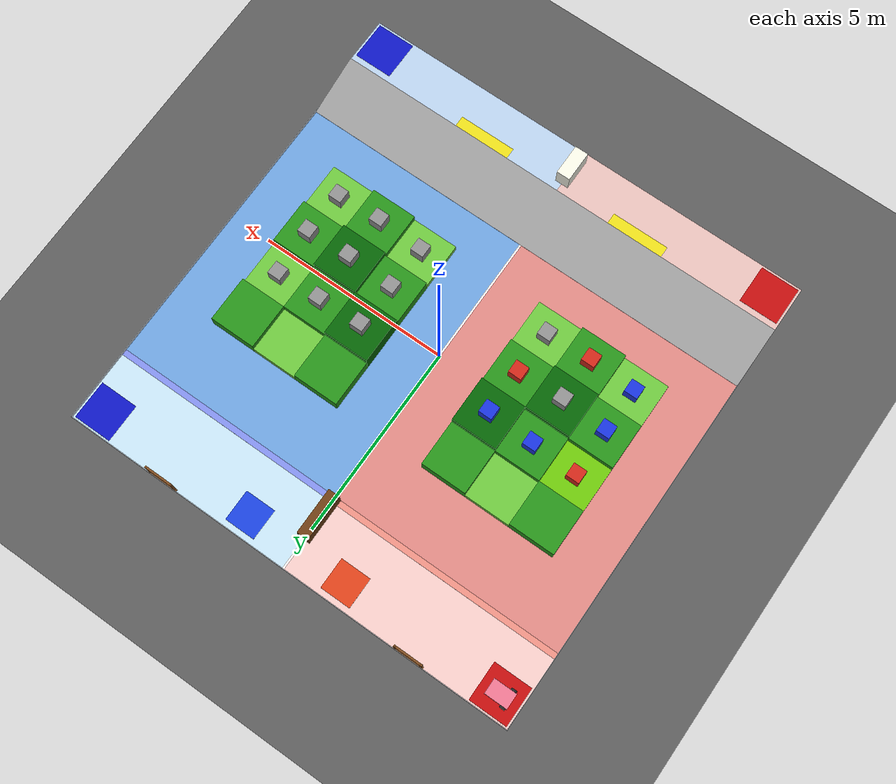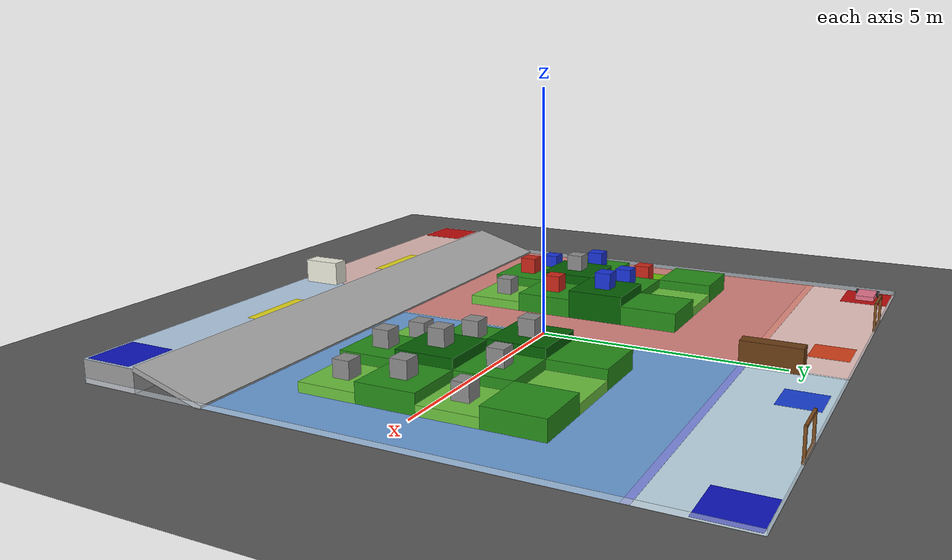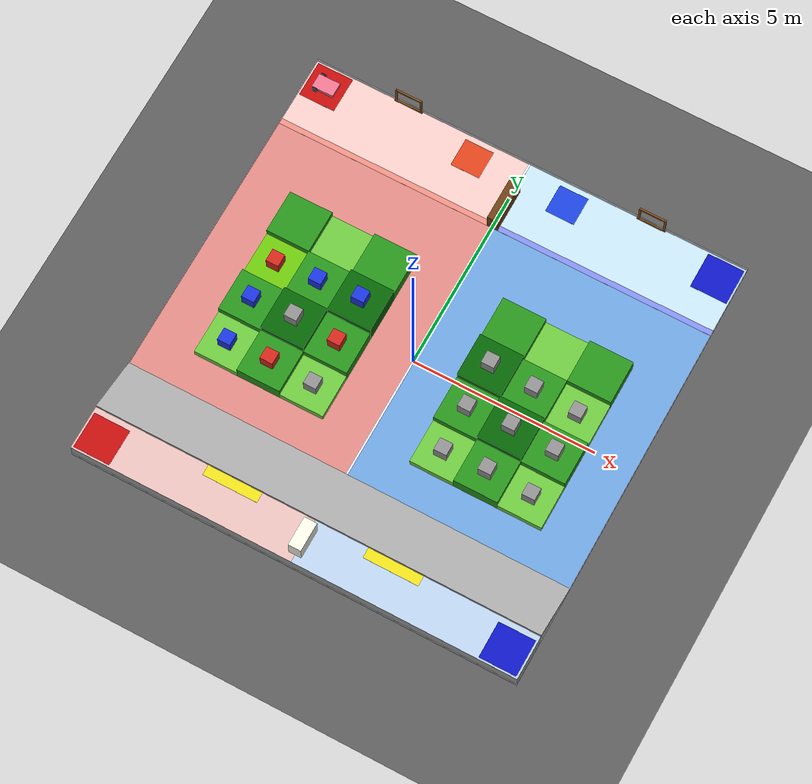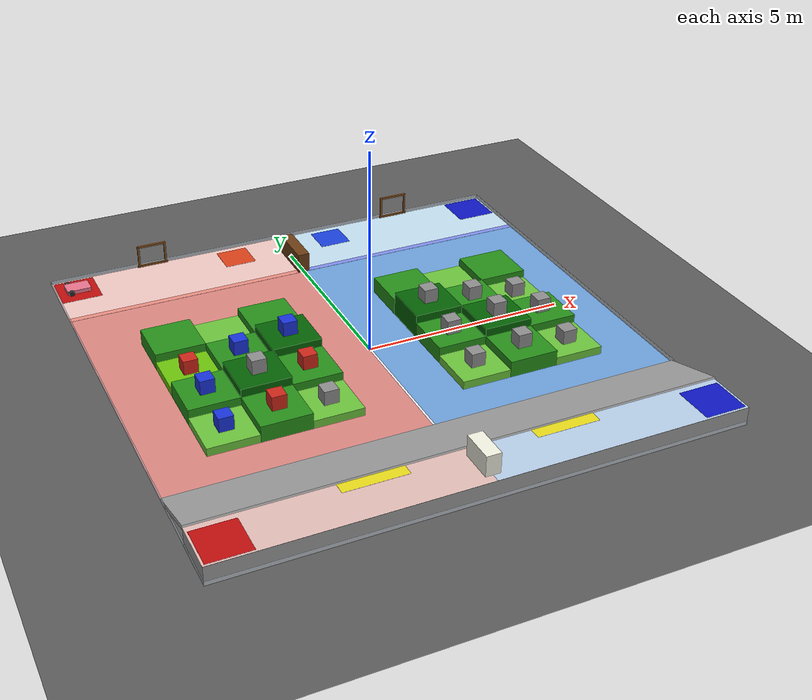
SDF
<?xml version="1.0"?>
<sdf version="1.9">
  <world name="r2_game_field">

    <!-- Physics -->
    <physics name="1ms" type="ignored">
      <max_step_size>0.001</max_step_size>
      <real_time_factor>1.0</real_time_factor>
    </physics>

    <!-- Gazebo Sim Plugins -->
    <plugin filename="gz-sim-physics-system"
      name="gz::sim::systems::Physics" />
    <plugin filename="gz-sim-user-commands-system"
      name="gz::sim::systems::UserCommands" />
    <plugin filename="gz-sim-scene-broadcaster-system"
      name="gz::sim::systems::SceneBroadcaster" />

    <!-- Sun -->
    <light type="directional" name="sun">
      <cast_shadows>true</cast_shadows>
      <pose>0 0 10 0 0 0</pose>
      <diffuse>0.85 0.85 0.85 1</diffuse>
      <specular>0.2 0.2 0.2 1</specular>
      <attenuation>
        <range>1000</range>
        <constant>0.9</constant>
        <linear>0.01</linear>
        <quadratic>0.001</quadratic>
      </attenuation>
      <direction>-0.5 0.1 -0.9</direction>
    </light>

    <!-- GROUND PLANE                                      -->
    <model name="ground_plane">
      <static>true</static>
      <link name="link">
        <collision name="collision">
          <geometry>
            <plane>
              <normal>0 0 1</normal>
              <size>20 20</size>
            </plane>
          </geometry>
          <surface>
            <friction>
              <ode>
                <mu>1.0</mu>
                <mu2>1.0</mu2>
              </ode>
            </friction>
          </surface>
        </collision>
        <visual name="visual">
          <geometry>
            <plane>
              <normal>0 0 1</normal>
              <size>20 20</size>
            </plane>
          </geometry>
          <material>
            <ambient>0.35 0.35 0.35 1</ambient>
            <diffuse>0.35 0.35 0.35 1</diffuse>
          </material>
        </visual>
      </link>
    </model>

    <!-- FENCE WALLS — 100mm H × 10mm thick acrylic        -->

    <model name="fence_north">
      <static>true</static>
      <pose>0 6.09 0.05 0 0 0</pose>
      <link name="link">
        <collision name="collision">
          <geometry>
            <box>
              <size>12.20 0.01 0.1</size>
            </box>
          </geometry>
        </collision>
        <visual name="visual">
          <geometry>
            <box>
              <size>12.20 0.01 0.1</size>
            </box>
          </geometry>
          <material>
            <ambient>0.9 0.95 1.0 0.5</ambient>
            <diffuse>0.9 0.95 1.0 0.5</diffuse>
          </material>
        </visual>
      </link>
    </model>

    <model name="fence_south">
      <static>true</static>
      <pose>0 -6.09 0.05 0 0 0</pose>
      <link name="link">
        <collision name="collision">
          <geometry>
            <box>
              <size>12.20 0.01 0.1</size>
            </box>
          </geometry>
        </collision>
        <visual name="visual">
          <geometry>
            <box>
              <size>12.20 0.01 0.1</size>
            </box>
          </geometry>
          <material>
            <ambient>0.9 0.95 1.0 0.5</ambient>
            <diffuse>0.9 0.95 1.0 0.5</diffuse>
          </material>
        </visual>
      </link>
    </model>

    <model name="fence_west">
      <static>true</static>
      <pose>-6.09 0 0.05 0 0 0</pose>
      <link name="link">
        <collision name="collision">
          <geometry>
            <box>
              <size>0.01 12.18 0.1</size>
            </box>
          </geometry>
        </collision>
        <visual name="visual">
          <geometry>
            <box>
              <size>0.01 12.18 0.1</size>
            </box>
          </geometry>
          <material>
            <ambient>0.9 0.95 1.0 0.5</ambient>
            <diffuse>0.9 0.95 1.0 0.5</diffuse>
          </material>
        </visual>
      </link>
    </model>

    <model name="fence_east">
      <static>true</static>
      <pose>6.09 0 0.05 0 0 0</pose>
      <link name="link">
        <collision name="collision">
          <geometry>
            <box>
              <size>0.01 12.18 0.1</size>
            </box>
          </geometry>
        </collision>
        <visual name="visual">
          <geometry>
            <box>
              <size>0.01 12.18 0.1</size>
            </box>
          </geometry>
          <material>
            <ambient>0.9 0.95 1.0 0.5</ambient>
            <diffuse>0.9 0.95 1.0 0.5</diffuse>
          </material>
        </visual>
      </link>
    </model>

    <!-- Center divider line (visual only, spans all zones) -->
    <model name="center_line">
      <static>true</static>
      <pose>0 0 0.003 0 0 0</pose>
      <link name="link">
        <visual name="visual">
          <geometry>
            <box>
              <size>0.05 12.18 0.001</size>
            </box>
          </geometry>
          <material>
            <ambient>1.0 1.0 1.0 1</ambient>
            <diffuse>1.0 1.0 1.0 1</diffuse>
          </material>
        </visual>
      </link>
    </model>

    <!-- ZONE 1 — MARTIAL CLUB                             -->
    <!-- y: +4.09 to +6.09 (2000mm)                       -->
    <!-- Left = Pink (Team 1), Right = Blue (Team 2)       -->

    <!-- Zone 1 Left Floor (light pink) -->
    <model name="z1_left_floor">
      <static>true</static>
      <pose>-3.045 5.09 0.001 0 0 0</pose>
      <link name="link">
        <collision name="collision">
          <geometry>
            <box>
              <size>6.09 2.0 0.002</size>
            </box>
          </geometry>
        </collision>
        <visual name="visual">
          <geometry>
            <box>
              <size>6.09 2.0 0.002</size>
            </box>
          </geometry>
          <material>
            <ambient>0.93 0.78 0.76 1</ambient>
            <diffuse>0.93 0.78 0.76 1</diffuse>
          </material>
        </visual>
      </link>
    </model>

    <!-- Zone 1 Right Floor (light blue) -->
    <model name="z1_right_floor">
      <static>true</static>
      <pose>3.045 5.09 0.001 0 0 0</pose>
      <link name="link">
        <collision name="collision">
          <geometry>
            <box>
              <size>6.09 2.0 0.002</size>
            </box>
          </geometry>
        </collision>
        <visual name="visual">
          <geometry>
            <box>
              <size>6.09 2.0 0.002</size>
            </box>
          </geometry>
          <material>
            <ambient>0.76 0.87 0.93 1</ambient>
            <diffuse>0.76 0.87 0.93 1</diffuse>
          </material>
        </visual>
      </link>
    </model>

    <!-- R1 Retry Zone — Left top corner (dark red, 1000×1000mm) -->
    <model name="z1_retry_r1_left">
      <static>true</static>
      <pose>-5.54 5.54 0.003 0 0 0</pose>
      <link name="link">
        <visual name="visual">
          <geometry>
            <box>
              <size>1.0 1.0 0.002</size>
            </box>
          </geometry>
          <material>
            <ambient>0.75 0.05 0.05 1</ambient>
            <diffuse>0.75 0.05 0.05 1</diffuse>
          </material>
        </visual>
      </link>
    </model>

    <!-- R1 Retry Zone — Right top corner (dark blue, 1000×1000mm) -->
    <model name="z1_retry_r1_right">
      <static>true</static>
      <pose>5.54 5.54 0.003 0 0 0</pose>
      <link name="link">
        <visual name="visual">
          <geometry>
            <box>
              <size>1.0 1.0 0.002</size>
            </box>
          </geometry>
          <material>
            <ambient>0.05 0.08 0.75 1</ambient>
            <diffuse>0.05 0.08 0.75 1</diffuse>
          </material>
        </visual>
      </link>
    </model>

    <!-- R2 Start/Retry Zone — Left inner (red, 1000×1000mm, near center) -->
    <model name="z1_retry_r2_left">
      <static>true</static>
      <pose>-1.34 5.54 0.003 0 0 0</pose>
      <link name="link">
        <visual name="visual">
          <geometry>
            <box>
              <size>0.8 0.8 0.002</size>
            </box>
          </geometry>
          <material>
            <ambient>0.85 0.25 0.10 1</ambient>
            <diffuse>0.85 0.25 0.10 1</diffuse>
          </material>
        </visual>
      </link>
    </model>

    <!-- R2 Start/Retry Zone — Right inner (blue, 1000×1000mm, near center) -->
    <model name="z1_retry_r2_right">
      <static>true</static>
      <pose>1.34 5.54 0.003 0 0 0</pose>
      <link name="link">
        <visual name="visual">
          <geometry>
            <box>
              <size>0.8 0.8 0.002</size>
            </box>
          </geometry>
          <material>
            <ambient>0.10 0.25 0.85 1</ambient>
            <diffuse>0.10 0.25 0.85 1</diffuse>
          </material>
        </visual>
      </link>
    </model>

    <!-- Staff Rack — Left (brown, 800×300×600mm, between R1 and R2 zones) -->
    <model name="z1_staff_rack_left">
      <static>true</static>
      <pose>-3.44 6.065 0 0 0 0</pose>

      <link name="rack_link">

        <!-- Thanh đáy -->
        <collision name="base_col">
          <pose>0 0 0.025 0 0 0</pose>
          <geometry>
            <box>
              <size>0.8 0.05 0.05</size>
            </box>
          </geometry>
        </collision>

        <visual name="base_vis">
          <pose>0 0 0.025 0 0 0</pose>
          <geometry>
            <box>
              <size>0.8 0.05 0.05</size>
            </box>
          </geometry>
          <material>
            <ambient>0.50 0.30 0.12 1</ambient>
            <diffuse>0.50 0.30 0.12 1</diffuse>
          </material>
        </visual>

        <!-- Trụ trái -->
        <collision name="left_col">
          <pose>-0.35 0 0.30 0 0 0</pose>
          <geometry>
            <box>
              <size>0.05 0.05 0.6</size>
            </box>
          </geometry>
        </collision>

        <visual name="left_vis">
          <pose>-0.35 0 0.30 0 0 0</pose>
          <geometry>
            <box>
              <size>0.05 0.05 0.6</size>
            </box>
          </geometry>
          <material>
            <ambient>0.50 0.30 0.12 1</ambient>
            <diffuse>0.50 0.30 0.12 1</diffuse>
          </material>
        </visual>

        <!-- Trụ phải -->
        <collision name="right_col">
          <pose>0.35 0 0.30 0 0 0</pose>
          <geometry>
            <box>
              <size>0.05 0.05 0.6</size>
            </box>
          </geometry>
        </collision>

        <visual name="right_vis">
          <pose>0.35 0 0.30 0 0 0</pose>
          <geometry>
            <box>
              <size>0.05 0.05 0.6</size>
            </box>
          </geometry>
          <material>
            <ambient>0.50 0.30 0.12 1</ambient>
            <diffuse>0.50 0.30 0.12 1</diffuse>
          </material>
        </visual>

        <!-- Thanh ngang trên -->
        <collision name="top_col">
          <pose>0 0 0.575 0 0 0</pose>
          <geometry>
            <box>
              <size>0.7 0.05 0.05</size>
            </box>
          </geometry>
        </collision>

        <visual name="top_vis">
          <pose>0 0 0.575 0 0 0</pose>
          <geometry>
            <box>
              <size>0.7 0.05 0.05</size>
            </box>
          </geometry>
          <material>
            <ambient>0.50 0.30 0.12 1</ambient>
            <diffuse>0.50 0.30 0.12 1</diffuse>
          </material>
        </visual>

      </link>
    </model>

    <!-- Staff Rack — Right (brown, 800×300×600mm, between R1 and R2 zones) -->
    <model name="z1_staff_rack_right">
      <static>true</static>
      <pose>3.44 6.065 0 0 0 0</pose>

      <link name="rack_link">

        <!-- Thanh đáy -->
        <collision name="base_col">
          <pose>0 0 0.025 0 0 0</pose>
          <geometry>
            <box>
              <size>0.8 0.05 0.05</size>
            </box>
          </geometry>
        </collision>

        <visual name="base_vis">
          <pose>0 0 0.025 0 0 0</pose>
          <geometry>
            <box>
              <size>0.8 0.05 0.05</size>
            </box>
          </geometry>
          <material>
            <ambient>0.50 0.30 0.12 1</ambient>
            <diffuse>0.50 0.30 0.12 1</diffuse>
          </material>
        </visual>

        <!-- Trụ trái -->
        <collision name="left_col">
          <pose>-0.35 0 0.30 0 0 0</pose>
          <geometry>
            <box>
              <size>0.05 0.05 0.6</size>
            </box>
          </geometry>
        </collision>

        <visual name="left_vis">
          <pose>-0.35 0 0.30 0 0 0</pose>
          <geometry>
            <box>
              <size>0.05 0.05 0.6</size>
            </box>
          </geometry>
          <material>
            <ambient>0.50 0.30 0.12 1</ambient>
            <diffuse>0.50 0.30 0.12 1</diffuse>
          </material>
        </visual>

        <!-- Trụ phải -->
        <collision name="right_col">
          <pose>0.35 0 0.30 0 0 0</pose>
          <geometry>
            <box>
              <size>0.05 0.05 0.6</size>
            </box>
          </geometry>
        </collision>

        <visual name="right_vis">
          <pose>0.35 0 0.30 0 0 0</pose>
          <geometry>
            <box>
              <size>0.05 0.05 0.6</size>
            </box>
          </geometry>
          <material>
            <ambient>0.50 0.30 0.12 1</ambient>
            <diffuse>0.50 0.30 0.12 1</diffuse>
          </material>
        </visual>

        <!-- Thanh ngang trên -->
        <collision name="top_col">
          <pose>0 0 0.575 0 0 0</pose>
          <geometry>
            <box>
              <size>0.7 0.05 0.05</size>
            </box>
          </geometry>
        </collision>

        <visual name="top_vis">
          <pose>0 0 0.575 0 0 0</pose>
          <geometry>
            <box>
              <size>0.7 0.05 0.05</size>
            </box>
          </geometry>
          <material>
            <ambient>0.50 0.30 0.12 1</ambient>
            <diffuse>0.50 0.30 0.12 1</diffuse>
          </material>
        </visual>

      </link>
    </model>

    <!-- Spearhead Rack — Center (brown, 300×300×1200mm) -->
    <model name="z1_spearhead_rack">
      <static>true</static>
      <pose>0 4.69 0.25 0 0 0</pose>
      <link name="link">
        <collision name="collision">
          <geometry>
            <box>
              <size>0.3 1.2 0.5</size>
            </box>
          </geometry>
        </collision>
        <visual name="visual">
          <geometry>
            <box>
              <size>0.3 1.2 0.5</size>
            </box>
          </geometry>
          <material>
            <ambient>0.42 0.24 0.08 1</ambient>
            <diffuse>0.42 0.24 0.08 1</diffuse>
          </material>
        </visual>
      </link>
    </model>

    <!-- R2 Entrance Zone — Left (pink strip, 6090×150mm at bottom of Zone 1) -->
    <model name="z1_entrance_r2_left">
      <static>true</static>
      <pose>-3.045 4.165 0.003 0 0 0</pose>
      <link name="link">
        <visual name="visual">
          <geometry>
            <box>
              <size>6.09 0.15 0.002</size>
            </box>
          </geometry>
          <material>
            <ambient>0.90 0.55 0.50 1</ambient>
            <diffuse>0.90 0.55 0.50 1</diffuse>
          </material>
        </visual>
      </link>
    </model>

    <!-- R2 Entrance Zone — Right (blue strip, 6090×150mm at bottom of Zone 1) -->
    <model name="z1_entrance_r2_right">
      <static>true</static>
      <pose>3.045 4.165 0.003 0 0 0</pose>
      <link name="link">
        <visual name="visual">
          <geometry>
            <box>
              <size>6.09 0.15 0.002</size>
            </box>
          </geometry>
          <material>
            <ambient>0.50 0.55 0.90 1</ambient>
            <diffuse>0.50 0.55 0.90 1</diffuse>
          </material>
        </visual>
      </link>
    </model>

    <!-- ZONE 2 — MEIHUA FOREST                            -->
    <!-- y: -3.39 to +4.09 (7480mm)                       -->
    <!-- Left = Salmon/Pink, Right = Blue                  -->

    <!-- Zone 2 Left Floor (salmon/pink) -->
    <model name="left_floor">
      <static>true</static>
      <pose>-3.045 0.35 0.001 0 0 0</pose>
      <link name="link">
        <collision name="collision">
          <geometry>
            <box>
              <size>6.09 7.48 0.002</size>
            </box>
          </geometry>
        </collision>
        <visual name="visual">
          <geometry>
            <box>
              <size>6.09 7.48 0.002</size>
            </box>
          </geometry>
          <material>
            <ambient>0.85 0.52 0.50 1</ambient>
            <diffuse>0.85 0.52 0.50 1</diffuse>
          </material>
        </visual>
      </link>
    </model>

    <!-- Zone 2 Right Floor (blue) -->
    <model name="right_floor">
      <static>true</static>
      <pose>3.045 0.35 0.001 0 0 0</pose>
      <link name="link">
        <collision name="collision">
          <geometry>
            <box>
              <size>6.09 7.48 0.002</size>
            </box>
          </geometry>
        </collision>
        <visual name="visual">
          <geometry>
            <box>
              <size>6.09 7.48 0.002</size>
            </box>
          </geometry>
          <material>
            <ambient>0.42 0.62 0.85 1</ambient>
            <diffuse>0.42 0.62 0.85 1</diffuse>
          </material>
        </visual>
      </link>
    </model>

    <!-- LEFT MEIHUA FOREST — Team 1 (Pink side)           -->
    <!-- Cols x = {-4.2, -3.0, -1.8}                      -->
    <!-- Rows y = {+1.8, +0.6, -0.6, -1.8}                -->
    <!-- Height map:                                        -->
    <!--   Row +1.8:  400H  200H  400H                     -->
    <!--   Row +0.6:  600H  400H  200H                     -->
    <!--   Row -0.6:  400H  600H  400H                     -->
    <!--   Row -1.8:  200H  400H  200H                     -->

    <!-- Row y=+1.8 -->
    <model name="lf_r1c1">
      <static>true</static>
      <pose>-4.2 1.8 0.20 0 0 0</pose>
      <link name="link">
        <collision name="collision">
          <geometry>
            <box>
              <size>1.2 1.2 0.4</size>
            </box>
          </geometry>
        </collision>
        <visual name="visual">
          <geometry>
            <box>
              <size>1.2 1.2 0.4</size>
            </box>
          </geometry>
          <material>
            <ambient>0.15 0.56 0.10 1</ambient>
            <diffuse>0.15 0.56 0.10 1</diffuse>
            <specular>0.05 0.05 0.05 1</specular>
          </material>
        </visual>
      </link>
    </model>

    <model name="lf_r1c2">
      <static>true</static>
      <pose>-3.0 1.8 0.10 0 0 0</pose>
      <link name="link">
        <collision name="collision">
          <geometry>
            <box>
              <size>1.2 1.2 0.2</size>
            </box>
          </geometry>
        </collision>
        <visual name="visual">
          <geometry>
            <box>
              <size>1.2 1.2 0.2</size>
            </box>
          </geometry>
          <material>
            <ambient>0.42 0.76 0.24 1</ambient>
            <diffuse>0.42 0.76 0.24 1</diffuse>
            <specular>0.05 0.05 0.05 1</specular>
          </material>
        </visual>
      </link>
    </model>

    <model name="lf_r1c3">
      <static>true</static>
      <pose>-1.8 1.8 0.20 0 0 0</pose>
      <link name="link">
        <collision name="collision">
          <geometry>
            <box>
              <size>1.2 1.2 0.4</size>
            </box>
          </geometry>
        </collision>
        <visual name="visual">
          <geometry>
            <box>
              <size>1.2 1.2 0.4</size>
            </box>
          </geometry>
          <material>
            <ambient>0.15 0.56 0.10 1</ambient>
            <diffuse>0.15 0.56 0.10 1</diffuse>
            <specular>0.05 0.05 0.05 1</specular>
          </material>
        </visual>
      </link>
    </model>

    <!-- Row y=+0.6 -->
    <model name="lf_r2c1">
      <static>true</static>
      <pose>-4.2 0.6 0.10 0 0 0</pose>
      <link name="link">
        <collision name="collision">
          <geometry>
            <box>
              <size>1.2 1.2 0.2</size>
            </box>
          </geometry>
        </collision>
        <visual name="visual">
          <geometry>
            <box>
              <size>1.2 1.2 0.2</size>
            </box>
          </geometry>
          <material>
            <ambient>0.42 0.76 0.04 1</ambient>
            <diffuse>0.42 0.76 0.04 1</diffuse>
            <specular>0.05 0.05 0.05 1</specular>
          </material>
        </visual>
      </link>
    </model>

    <model name="lf_r2c2">
      <static>true</static>
      <pose>-3.0 0.6 0.20 0 0 0</pose>
      <link name="link">
        <collision name="collision">
          <geometry>
            <box>
              <size>1.2 1.2 0.4</size>
            </box>
          </geometry>
        </collision>
        <visual name="visual">
          <geometry>
            <box>
              <size>1.2 1.2 0.4</size>
            </box>
          </geometry>
          <material>
            <ambient>0.15 0.56 0.10 1</ambient>
            <diffuse>0.15 0.56 0.10 1</diffuse>
            <specular>0.05 0.05 0.05 1</specular>
          </material>
        </visual>
      </link>
    </model>

    <model name="lf_r2c3">
      <static>true</static>
      <pose>-1.8 0.6 0.30 0 0 0</pose>
      <link name="link">
        <collision name="collision">
          <geometry>
            <box>
              <size>1.2 1.2 0.6</size>
            </box>
          </geometry>
        </collision>
        <visual name="visual">
          <geometry>
            <box>
              <size>1.2 1.2 0.6</size>
            </box>
          </geometry>
          <material>
            <ambient>0.02 0.38 0.02 1</ambient>
            <diffuse>0.02 0.38 0.02 1</diffuse>
            <specular>0.05 0.05 0.05 1</specular>
          </material>
        </visual>
      </link>
    </model>

    <!-- Row y=-0.6 -->
    <model name="lf_r3c1">
      <static>true</static>
      <pose>-4.2 -0.6 0.20 0 0 0</pose>
      <link name="link">
        <collision name="collision">
          <geometry>
            <box>
              <size>1.2 1.2 0.4</size>
            </box>
          </geometry>
        </collision>
        <visual name="visual">
          <geometry>
            <box>
              <size>1.2 1.2 0.4</size>
            </box>
          </geometry>
          <material>
            <ambient>0.15 0.56 0.10 1</ambient>
            <diffuse>0.15 0.56 0.10 1</diffuse>
            <specular>0.05 0.05 0.05 1</specular>
          </material>
        </visual>
      </link>
    </model>

    <model name="lf_r3c2">
      <static>true</static>
      <pose>-3.0 -0.6 0.30 0 0 0</pose>
      <link name="link">
        <collision name="collision">
          <geometry>
            <box>
              <size>1.2 1.2 0.6</size>
            </box>
          </geometry>
        </collision>
        <visual name="visual">
          <geometry>
            <box>
              <size>1.2 1.2 0.6</size>
            </box>
          </geometry>
          <material>
            <ambient>0.02 0.38 0.02 1</ambient>
            <diffuse>0.02 0.38 0.02 1</diffuse>
            <specular>0.05 0.05 0.05 1</specular>
          </material>
        </visual>
      </link>
    </model>

    <model name="lf_r3c3">
      <static>true</static>
      <pose>-1.8 -0.6 0.20 0 0 0</pose>
      <link name="link">
        <collision name="collision">
          <geometry>
            <box>
              <size>1.2 1.2 0.4</size>
            </box>
          </geometry>
        </collision>
        <visual name="visual">
          <geometry>
            <box>
              <size>1.2 1.2 0.4</size>
            </box>
          </geometry>
          <material>
            <ambient>0.15 0.56 0.10 1</ambient>
            <diffuse>0.15 0.56 0.10 1</diffuse>
            <specular>0.05 0.05 0.05 1</specular>
          </material>
        </visual>
      </link>
    </model>

    <!-- Row y=-1.8 -->
    <model name="lf_r4c1">
      <static>true</static>
      <pose>-4.2 -1.8 0.10 0 0 0</pose>
      <link name="link">
        <collision name="collision">
          <geometry>
            <box>
              <size>1.2 1.2 0.2</size>
            </box>
          </geometry>
        </collision>
        <visual name="visual">
          <geometry>
            <box>
              <size>1.2 1.2 0.2</size>
            </box>
          </geometry>
          <material>
            <ambient>0.42 0.76 0.24 1</ambient>
            <diffuse>0.42 0.76 0.24 1</diffuse>
            <specular>0.05 0.05 0.05 1</specular>
          </material>
        </visual>
      </link>
    </model>

    <model name="lf_r4c2">
      <static>true</static>
      <pose>-3.0 -1.8 0.20 0 0 0</pose>
      <link name="link">
        <collision name="collision">
          <geometry>
            <box>
              <size>1.2 1.2 0.4</size>
            </box>
          </geometry>
        </collision>
        <visual name="visual">
          <geometry>
            <box>
              <size>1.2 1.2 0.4</size>
            </box>
          </geometry>
          <material>
            <ambient>0.15 0.56 0.10 1</ambient>
            <diffuse>0.15 0.56 0.10 1</diffuse>
            <specular>0.05 0.05 0.05 1</specular>
          </material>
        </visual>
      </link>
    </model>

    <model name="lf_r4c3">
      <static>true</static>
      <pose>-1.8 -1.8 0.10 0 0 0</pose>
      <link name="link">
        <collision name="collision">
          <geometry>
            <box>
              <size>1.2 1.2 0.2</size>
            </box>
          </geometry>
        </collision>
        <visual name="visual">
          <geometry>
            <box>
              <size>1.2 1.2 0.2</size>
            </box>
          </geometry>
          <material>
            <ambient>0.42 0.76 0.24 1</ambient>
            <diffuse>0.42 0.76 0.24 1</diffuse>
            <specular>0.05 0.05 0.05 1</specular>
          </material>
        </visual>
      </link>
    </model>

    <!-- RIGHT MEIHUA FOREST — Team 2 (Blue side)          -->
    <!-- Cols x = {+1.8, +3.0, +4.2}                      -->
    <!-- Same height pattern (mirrored)                    -->

    <!-- Row y=+1.8 -->
    <model name="rf_r1c1">
      <static>true</static>
      <pose>1.8 1.8 0.20 0 0 0</pose>
      <link name="link">
        <collision name="collision">
          <geometry>
            <box>
              <size>1.2 1.2 0.4</size>
            </box>
          </geometry>
        </collision>
        <visual name="visual">
          <geometry>
            <box>
              <size>1.2 1.2 0.4</size>
            </box>
          </geometry>
          <material>
            <ambient>0.15 0.56 0.10 1</ambient>
            <diffuse>0.15 0.56 0.10 1</diffuse>
            <specular>0.05 0.05 0.05 1</specular>
          </material>
        </visual>
      </link>
    </model>

    <model name="rf_r1c2">
      <static>true</static>
      <pose>3.0 1.8 0.10 0 0 0</pose>
      <link name="link">
        <collision name="collision">
          <geometry>
            <box>
              <size>1.2 1.2 0.2</size>
            </box>
          </geometry>
        </collision>
        <visual name="visual">
          <geometry>
            <box>
              <size>1.2 1.2 0.2</size>
            </box>
          </geometry>
          <material>
            <ambient>0.42 0.76 0.24 1</ambient>
            <diffuse>0.42 0.76 0.24 1</diffuse>
            <specular>0.05 0.05 0.05 1</specular>
          </material>
        </visual>
      </link>
    </model>

    <model name="rf_r1c3">
      <static>true</static>
      <pose>4.2 1.8 0.20 0 0 0</pose>
      <link name="link">
        <collision name="collision">
          <geometry>
            <box>
              <size>1.2 1.2 0.4</size>
            </box>
          </geometry>
        </collision>
        <visual name="visual">
          <geometry>
            <box>
              <size>1.2 1.2 0.4</size>
            </box>
          </geometry>
          <material>
            <ambient>0.15 0.56 0.10 1</ambient>
            <diffuse>0.15 0.56 0.10 1</diffuse>
            <specular>0.05 0.05 0.05 1</specular>
          </material>
        </visual>
      </link>
    </model>

    <!-- Row y=+0.6 -->
    <model name="rf_r2c1">
      <static>true</static>
      <pose>1.8 0.6 0.30 0 0 0</pose>
      <link name="link">
        <collision name="collision">
          <geometry>
            <box>
              <size>1.2 1.2 0.6</size>
            </box>
          </geometry>
        </collision>
        <visual name="visual">
          <geometry>
            <box>
              <size>1.2 1.2 0.6</size>
            </box>
          </geometry>
          <material>
            <ambient>0.02 0.38 0.02 1</ambient>
            <diffuse>0.02 0.38 0.02 1</diffuse>
            <specular>0.05 0.05 0.05 1</specular>
          </material>
        </visual>
      </link>
    </model>

    <model name="rf_r2c2">
      <static>true</static>
      <pose>3.0 0.6 0.20 0 0 0</pose>
      <link name="link">
        <collision name="collision">
          <geometry>
            <box>
              <size>1.2 1.2 0.4</size>
            </box>
          </geometry>
        </collision>
        <visual name="visual">
          <geometry>
            <box>
              <size>1.2 1.2 0.4</size>
            </box>
          </geometry>
          <material>
            <ambient>0.15 0.56 0.10 1</ambient>
            <diffuse>0.15 0.56 0.10 1</diffuse>
            <specular>0.05 0.05 0.05 1</specular>
          </material>
        </visual>
      </link>
    </model>

    <model name="rf_r2c3">
      <static>true</static>
      <pose>4.2 0.6 0.10 0 0 0</pose>
      <link name="link">
        <collision name="collision">
          <geometry>
            <box>
              <size>1.2 1.2 0.2</size>
            </box>
          </geometry>
        </collision>
        <visual name="visual">
          <geometry>
            <box>
              <size>1.2 1.2 0.2</size>
            </box>
          </geometry>
          <material>
            <ambient>0.42 0.76 0.24 1</ambient>
            <diffuse>0.42 0.76 0.24 1</diffuse>
            <specular>0.05 0.05 0.05 1</specular>
          </material>
        </visual>
      </link>
    </model>

    <!-- Row y=-0.6 -->
    <model name="rf_r3c1">
      <static>true</static>
      <pose>1.8 -0.6 0.20 0 0 0</pose>
      <link name="link">
        <collision name="collision">
          <geometry>
            <box>
              <size>1.2 1.2 0.4</size>
            </box>
          </geometry>
        </collision>
        <visual name="visual">
          <geometry>
            <box>
              <size>1.2 1.2 0.4</size>
            </box>
          </geometry>
          <material>
            <ambient>0.15 0.56 0.10 1</ambient>
            <diffuse>0.15 0.56 0.10 1</diffuse>
            <specular>0.05 0.05 0.05 1</specular>
          </material>
        </visual>
      </link>
    </model>

    <model name="rf_r3c2">
      <static>true</static>
      <pose>3.0 -0.6 0.30 0 0 0</pose>
      <link name="link">
        <collision name="collision">
          <geometry>
            <box>
              <size>1.2 1.2 0.6</size>
            </box>
          </geometry>
        </collision>
        <visual name="visual">
          <geometry>
            <box>
              <size>1.2 1.2 0.6</size>
            </box>
          </geometry>
          <material>
            <ambient>0.02 0.38 0.02 1</ambient>
            <diffuse>0.02 0.38 0.02 1</diffuse>
            <specular>0.05 0.05 0.05 1</specular>
          </material>
        </visual>
      </link>
    </model>

    <model name="rf_r3c3">
      <static>true</static>
      <pose>4.2 -0.6 0.20 0 0 0</pose>
      <link name="link">
        <collision name="collision">
          <geometry>
            <box>
              <size>1.2 1.2 0.4</size>
            </box>
          </geometry>
        </collision>
        <visual name="visual">
          <geometry>
            <box>
              <size>1.2 1.2 0.4</size>
            </box>
          </geometry>
          <material>
            <ambient>0.15 0.56 0.10 1</ambient>
            <diffuse>0.15 0.56 0.10 1</diffuse>
            <specular>0.05 0.05 0.05 1</specular>
          </material>
        </visual>
      </link>
    </model>

    <!-- Row y=-1.8 -->
    <model name="rf_r4c1">
      <static>true</static>
      <pose>1.8 -1.8 0.10 0 0 0</pose>
      <link name="link">
        <collision name="collision">
          <geometry>
            <box>
              <size>1.2 1.2 0.2</size>
            </box>
          </geometry>
        </collision>
        <visual name="visual">
          <geometry>
            <box>
              <size>1.2 1.2 0.2</size>
            </box>
          </geometry>
          <material>
            <ambient>0.42 0.76 0.24 1</ambient>
            <diffuse>0.42 0.76 0.24 1</diffuse>
            <specular>0.05 0.05 0.05 1</specular>
          </material>
        </visual>
      </link>
    </model>

    <model name="rf_r4c2">
      <static>true</static>
      <pose>3.0 -1.8 0.20 0 0 0</pose>
      <link name="link">
        <collision name="collision">
          <geometry>
            <box>
              <size>1.2 1.2 0.4</size>
            </box>
          </geometry>
        </collision>
        <visual name="visual">
          <geometry>
            <box>
              <size>1.2 1.2 0.4</size>
            </box>
          </geometry>
          <material>
            <ambient>0.15 0.56 0.10 1</ambient>
            <diffuse>0.15 0.56 0.10 1</diffuse>
            <specular>0.05 0.05 0.05 1</specular>
          </material>
        </visual>
      </link>
    </model>

    <model name="rf_r4c3">
      <static>true</static>
      <pose>4.2 -1.8 0.10 0 0 0</pose>
      <link name="link">
        <collision name="collision">
          <geometry>
            <box>
              <size>1.2 1.2 0.2</size>
            </box>
          </geometry>
        </collision>
        <visual name="visual">
          <geometry>
            <box>
              <size>1.2 1.2 0.2</size>
            </box>
          </geometry>
          <material>
            <ambient>0.42 0.76 0.24 1</ambient>
            <diffuse>0.42 0.76 0.24 1</diffuse>
            <specular>0.05 0.05 0.05 1</specular>
          </material>
        </visual>
      </link>
    </model>

    <!-- ZONE 3 — ARENA                                    -->
    <!-- y: -3.39 to -6.09 (2700mm)                       -->
    <!-- Left = lighter Pink, Right = lighter Blue         -->
    <!-- ELEVATED PLATFORM at 450mm (0.45m)                -->
    <!--   Slope  : y=-3.39 → -4.89 (1500mm, ~15° / 16.7°) -->
    <!--   Platform: y=-4.89 → -6.09 (1200mm, 450mm H)    -->
    <!-- Contents: Slope, Platform, Used Weapon Areas,     -->
    <!--           Tic-Tac-Toe Rack, Retry Zones           -->

    <!-- Zone 3 Left Floor (lighter salmon) — platform area only (y=-4.89 to -6.09) -->
    <model name="z3_left_floor">
      <static>true</static>
      <pose>-3.045 -5.49 0.451 0 0 0</pose>
      <link name="link">
        <collision name="collision">
          <geometry>
            <box>
              <size>6.09 1.2 0.002</size>
            </box>
          </geometry>
        </collision>
        <visual name="visual">
          <geometry>
            <box>
              <size>6.09 1.2 0.002</size>
            </box>
          </geometry>
          <material>
            <ambient>0.88 0.73 0.71 1</ambient>
            <diffuse>0.88 0.73 0.71 1</diffuse>
          </material>
        </visual>
      </link>
    </model>

    <!-- Zone 3 Right Floor (lighter blue) — platform area only (y=-4.89 to -6.09) -->
    <model name="z3_right_floor">
      <static>true</static>
      <pose>3.045 -5.49 0.451 0 0 0</pose>
      <link name="link">
        <collision name="collision">
          <geometry>
            <box>
              <size>6.09 1.2 0.002</size>
            </box>
          </geometry>
        </collision>
        <visual name="visual">
          <geometry>
            <box>
              <size>6.09 1.2 0.002</size>
            </box>
          </geometry>
          <material>
            <ambient>0.71 0.80 0.90 1</ambient>
            <diffuse>0.71 0.80 0.90 1</diffuse>
          </material>
        </visual>
      </link>
    </model>

    <!-- Zone 3 Slope — tilted box, full field width (12.18 m) -->
    <model name="z3_slope">
      <static>true</static>
      <!-- roll=-0.2915 rad tilts -Y end up to z=0.45, +Y end down to z=0 -->
      <pose>0 -4.14 0.225 -0.2915 0 0</pose>
      <link name="link">
        <collision name="collision">
          <geometry>
            <box>
              <size>12.18 1.566 0.10</size>
            </box>
          </geometry>
          <surface>
            <friction>
              <ode>
                <mu>0.8</mu>
                <mu2>0.8</mu2>
              </ode>
            </friction>
          </surface>
        </collision>
        <visual name="visual">
          <geometry>
            <box>
              <size>12.18 1.566 0.10</size>
            </box>
          </geometry>
          <material>
            <ambient>0.65 0.65 0.65 1</ambient>
            <diffuse>0.65 0.65 0.65 1</diffuse>
          </material>
        </visual>
      </link>
    </model>

    <!-- Zone 3 Platform Base — solid 450 mm slab, full field width -->
    <model name="z3_platform_base">
      <static>true</static>
      <pose>0 -5.49 0.225 0 0 0</pose>
      <link name="link">
        <collision name="collision">
          <geometry>
            <box>
              <size>12.18 1.2 0.45</size>
            </box>
          </geometry>
        </collision>
        <visual name="visual">
          <geometry>
            <box>
              <size>12.18 1.2 0.45</size>
            </box>
          </geometry>
          <material>
            <ambient>0.60 0.60 0.60 1</ambient>
            <diffuse>0.60 0.60 0.60 1</diffuse>
          </material>
        </visual>
      </link>
    </model>

    <!-- Used Weapon Area — Left (yellow tile, 1500×300mm) — on platform -->
    <model name="z3_used_weapon_left">
      <static>true</static>
      <pose>-2.2 -5.0 0.453 0 0 0</pose>
      <link name="link">
        <visual name="visual">
          <geometry>
            <box>
              <size>1.5 0.35 0.002</size>
            </box>
          </geometry>
          <material>
            <ambient>0.90 0.85 0.10 1</ambient>
            <diffuse>0.90 0.85 0.10 1</diffuse>
          </material>
        </visual>
      </link>
    </model>

    <!-- Used Weapon Area — Right (yellow tile) — on platform -->
    <model name="z3_used_weapon_right">
      <static>true</static>
      <pose>2.2 -5.0 0.453 0 0 0</pose>
      <link name="link">
        <visual name="visual">
          <geometry>
            <box>
              <size>1.5 0.35 0.002</size>
            </box>
          </geometry>
          <material>
            <ambient>0.90 0.85 0.10 1</ambient>
            <diffuse>0.90 0.85 0.10 1</diffuse>
          </material>
        </visual>
      </link>
    </model>

    <!-- Tic-Tac-Toe Rack (center, white/cream, 350×800×500mm) — on platform -->
    <model name="z3_tictactoe_rack">
      <static>true</static>
      <pose>0 -5.49 0.70 0 0 0</pose>
      <link name="link">
        <collision name="collision">
          <geometry>
            <box>
              <size>0.35 0.8 0.5</size>
            </box>
          </geometry>
        </collision>
        <visual name="visual">
          <geometry>
            <box>
              <size>0.35 0.8 0.5</size>
            </box>
          </geometry>
          <material>
            <ambient>0.94 0.94 0.88 1</ambient>
            <diffuse>0.94 0.94 0.88 1</diffuse>
          </material>
        </visual>
      </link>
    </model>

    <!-- Bottom Retry Zone — Left (red, 1000×1000mm) — on platform -->
    <model name="z3_retry_bottom_left">
      <static>true</static>
      <pose>-5.54 -5.54 0.453 0 0 0</pose>
      <link name="link">
        <visual name="visual">
          <geometry>
            <box>
              <size>1.0 1.0 0.002</size>
            </box>
          </geometry>
          <material>
            <ambient>0.75 0.05 0.05 1</ambient>
            <diffuse>0.75 0.05 0.05 1</diffuse>
          </material>
        </visual>
      </link>
    </model>

    <!-- Bottom Retry Zone — Right (blue, 1000×1000mm) — on platform -->
    <model name="z3_retry_bottom_right">
      <static>true</static>
      <pose>5.54 -5.54 0.453 0 0 0</pose>
      <link name="link">
        <visual name="visual">
          <geometry>
            <box>
              <size>1.0 1.0 0.002</size>
            </box>
          </geometry>
          <material>
            <ambient>0.05 0.08 0.75 1</ambient>
            <diffuse>0.05 0.08 0.75 1</diffuse>
          </material>
        </visual>
      </link>
    </model>

    <!-- KFS_SECTION_START -->
    <!-- KFS — cube 350x350x350mm | r1=red  r2=blue  fake=grey -->
    <!-- Edit config/kfs_layout.yaml then re-run apply_kfs_layout.py -->

    <model name="kfs_lf_r2c1">
      <pose>-4.2 0.6 0.3750 0 0 0</pose>
      <link name="link">
        <visual name="visual">
          <geometry><box><size>0.35 0.35 0.35</size></box></geometry>
          <material><ambient>0.80 0.15 0.10 1</ambient><diffuse>0.80 0.15 0.10 1</diffuse></material>
        </visual>
        <collision name="collision">
          <geometry><box><size>0.35 0.35 0.35</size></box></geometry>
        </collision>
        <inertial>
          <mass>0.2</mass>
          <inertia><ixx>0.00408</ixx><ixy>0</ixy><ixz>0</ixz><iyy>0.00408</iyy><iyz>0</iyz><izz>0.00408</izz></inertia>
        </inertial>
      </link>
    </model>

    <model name="kfs_lf_r2c2">
      <pose>-3.0 0.6 0.5750 0 0 0</pose>
      <link name="link">
        <visual name="visual">
          <geometry><box><size>0.35 0.35 0.35</size></box></geometry>
          <material><ambient>0.10 0.20 0.85 1</ambient><diffuse>0.10 0.20 0.85 1</diffuse></material>
        </visual>
        <collision name="collision">
          <geometry><box><size>0.35 0.35 0.35</size></box></geometry>
        </collision>
        <inertial>
          <mass>0.2</mass>
          <inertia><ixx>0.00408</ixx><ixy>0</ixy><ixz>0</ixz><iyy>0.00408</iyy><iyz>0</iyz><izz>0.00408</izz></inertia>
        </inertial>
      </link>
    </model>

    <model name="kfs_lf_r2c3">
      <pose>-1.8 0.6 0.7750 0 0 0</pose>
      <link name="link">
        <visual name="visual">
          <geometry><box><size>0.35 0.35 0.35</size></box></geometry>
          <material><ambient>0.10 0.20 0.85 1</ambient><diffuse>0.10 0.20 0.85 1</diffuse></material>
        </visual>
        <collision name="collision">
          <geometry><box><size>0.35 0.35 0.35</size></box></geometry>
        </collision>
        <inertial>
          <mass>0.2</mass>
          <inertia><ixx>0.00408</ixx><ixy>0</ixy><ixz>0</ixz><iyy>0.00408</iyy><iyz>0</iyz><izz>0.00408</izz></inertia>
        </inertial>
      </link>
    </model>

    <model name="kfs_lf_r3c1">
      <pose>-4.2 -0.6 0.5750 0 0 0</pose>
      <link name="link">
        <visual name="visual">
          <geometry><box><size>0.35 0.35 0.35</size></box></geometry>
          <material><ambient>0.10 0.20 0.85 1</ambient><diffuse>0.10 0.20 0.85 1</diffuse></material>
        </visual>
        <collision name="collision">
          <geometry><box><size>0.35 0.35 0.35</size></box></geometry>
        </collision>
        <inertial>
          <mass>0.2</mass>
          <inertia><ixx>0.00408</ixx><ixy>0</ixy><ixz>0</ixz><iyy>0.00408</iyy><iyz>0</iyz><izz>0.00408</izz></inertia>
        </inertial>
      </link>
    </model>

    <model name="kfs_lf_r3c2"><!-- fake -->
      <pose>-3.0 -0.6 0.7750 0 0 0</pose>
      <link name="link">
        <visual name="visual">
          <geometry><box><size>0.35 0.35 0.35</size></box></geometry>
          <material><ambient>0.55 0.55 0.55 1</ambient><diffuse>0.55 0.55 0.55 1</diffuse></material>
        </visual>
        <collision name="collision">
          <geometry><box><size>0.35 0.35 0.35</size></box></geometry>
        </collision>
        <inertial>
          <mass>0.2</mass>
          <inertia><ixx>0.00408</ixx><ixy>0</ixy><ixz>0</ixz><iyy>0.00408</iyy><iyz>0</iyz><izz>0.00408</izz></inertia>
        </inertial>
      </link>
    </model>

    <model name="kfs_lf_r3c3">
      <pose>-1.8 -0.6 0.5750 0 0 0</pose>
      <link name="link">
        <visual name="visual">
          <geometry><box><size>0.35 0.35 0.35</size></box></geometry>
          <material><ambient>0.80 0.15 0.10 1</ambient><diffuse>0.80 0.15 0.10 1</diffuse></material>
        </visual>
        <collision name="collision">
          <geometry><box><size>0.35 0.35 0.35</size></box></geometry>
        </collision>
        <inertial>
          <mass>0.2</mass>
          <inertia><ixx>0.00408</ixx><ixy>0</ixy><ixz>0</ixz><iyy>0.00408</iyy><iyz>0</iyz><izz>0.00408</izz></inertia>
        </inertial>
      </link>
    </model>

    <model name="kfs_lf_r4c1">
      <pose>-4.2 -1.8 0.3750 0 0 0</pose>
      <link name="link">
        <visual name="visual">
          <geometry><box><size>0.35 0.35 0.35</size></box></geometry>
          <material><ambient>0.10 0.20 0.85 1</ambient><diffuse>0.10 0.20 0.85 1</diffuse></material>
        </visual>
        <collision name="collision">
          <geometry><box><size>0.35 0.35 0.35</size></box></geometry>
        </collision>
        <inertial>
          <mass>0.2</mass>
          <inertia><ixx>0.00408</ixx><ixy>0</ixy><ixz>0</ixz><iyy>0.00408</iyy><iyz>0</iyz><izz>0.00408</izz></inertia>
        </inertial>
      </link>
    </model>

    <model name="kfs_lf_r4c2">
      <pose>-3.0 -1.8 0.5750 0 0 0</pose>
      <link name="link">
        <visual name="visual">
          <geometry><box><size>0.35 0.35 0.35</size></box></geometry>
          <material><ambient>0.80 0.15 0.10 1</ambient><diffuse>0.80 0.15 0.10 1</diffuse></material>
        </visual>
        <collision name="collision">
          <geometry><box><size>0.35 0.35 0.35</size></box></geometry>
        </collision>
        <inertial>
          <mass>0.2</mass>
          <inertia><ixx>0.00408</ixx><ixy>0</ixy><ixz>0</ixz><iyy>0.00408</iyy><iyz>0</iyz><izz>0.00408</izz></inertia>
        </inertial>
      </link>
    </model>

    <model name="kfs_lf_r4c3"><!-- fake -->
      <pose>-1.8 -1.8 0.3750 0 0 0</pose>
      <link name="link">
        <visual name="visual">
          <geometry><box><size>0.35 0.35 0.35</size></box></geometry>
          <material><ambient>0.55 0.55 0.55 1</ambient><diffuse>0.55 0.55 0.55 1</diffuse></material>
        </visual>
        <collision name="collision">
          <geometry><box><size>0.35 0.35 0.35</size></box></geometry>
        </collision>
        <inertial>
          <mass>0.2</mass>
          <inertia><ixx>0.00408</ixx><ixy>0</ixy><ixz>0</ixz><iyy>0.00408</iyy><iyz>0</iyz><izz>0.00408</izz></inertia>
        </inertial>
      </link>
    </model>

    <model name="kfs_rf_r2c1"><!-- fake -->
      <pose>1.8 0.6 0.7750 0 0 0</pose>
      <link name="link">
        <visual name="visual">
          <geometry><box><size>0.35 0.35 0.35</size></box></geometry>
          <material><ambient>0.55 0.55 0.55 1</ambient><diffuse>0.55 0.55 0.55 1</diffuse></material>
        </visual>
        <collision name="collision">
          <geometry><box><size>0.35 0.35 0.35</size></box></geometry>
        </collision>
        <inertial>
          <mass>0.2</mass>
          <inertia><ixx>0.00408</ixx><ixy>0</ixy><ixz>0</ixz><iyy>0.00408</iyy><iyz>0</iyz><izz>0.00408</izz></inertia>
        </inertial>
      </link>
    </model>

    <model name="kfs_rf_r2c2"><!-- fake -->
      <pose>3.0 0.6 0.5750 0 0 0</pose>
      <link name="link">
        <visual name="visual">
          <geometry><box><size>0.35 0.35 0.35</size></box></geometry>
          <material><ambient>0.55 0.55 0.55 1</ambient><diffuse>0.55 0.55 0.55 1</diffuse></material>
        </visual>
        <collision name="collision">
          <geometry><box><size>0.35 0.35 0.35</size></box></geometry>
        </collision>
        <inertial>
          <mass>0.2</mass>
          <inertia><ixx>0.00408</ixx><ixy>0</ixy><ixz>0</ixz><iyy>0.00408</iyy><iyz>0</iyz><izz>0.00408</izz></inertia>
        </inertial>
      </link>
    </model>

    <model name="kfs_rf_r2c3"><!-- fake -->
      <pose>4.2 0.6 0.3750 0 0 0</pose>
      <link name="link">
        <visual name="visual">
          <geometry><box><size>0.35 0.35 0.35</size></box></geometry>
          <material><ambient>0.55 0.55 0.55 1</ambient><diffuse>0.55 0.55 0.55 1</diffuse></material>
        </visual>
        <collision name="collision">
          <geometry><box><size>0.35 0.35 0.35</size></box></geometry>
        </collision>
        <inertial>
          <mass>0.2</mass>
          <inertia><ixx>0.00408</ixx><ixy>0</ixy><ixz>0</ixz><iyy>0.00408</iyy><iyz>0</iyz><izz>0.00408</izz></inertia>
        </inertial>
      </link>
    </model>

    <model name="kfs_rf_r3c1"><!-- fake -->
      <pose>1.8 -0.6 0.5750 0 0 0</pose>
      <link name="link">
        <visual name="visual">
          <geometry><box><size>0.35 0.35 0.35</size></box></geometry>
          <material><ambient>0.55 0.55 0.55 1</ambient><diffuse>0.55 0.55 0.55 1</diffuse></material>
        </visual>
        <collision name="collision">
          <geometry><box><size>0.35 0.35 0.35</size></box></geometry>
        </collision>
        <inertial>
          <mass>0.2</mass>
          <inertia><ixx>0.00408</ixx><ixy>0</ixy><ixz>0</ixz><iyy>0.00408</iyy><iyz>0</iyz><izz>0.00408</izz></inertia>
        </inertial>
      </link>
    </model>

    <model name="kfs_rf_r3c2"><!-- fake -->
      <pose>3.0 -0.6 0.7750 0 0 0</pose>
      <link name="link">
        <visual name="visual">
          <geometry><box><size>0.35 0.35 0.35</size></box></geometry>
          <material><ambient>0.55 0.55 0.55 1</ambient><diffuse>0.55 0.55 0.55 1</diffuse></material>
        </visual>
        <collision name="collision">
          <geometry><box><size>0.35 0.35 0.35</size></box></geometry>
        </collision>
        <inertial>
          <mass>0.2</mass>
          <inertia><ixx>0.00408</ixx><ixy>0</ixy><ixz>0</ixz><iyy>0.00408</iyy><iyz>0</iyz><izz>0.00408</izz></inertia>
        </inertial>
      </link>
    </model>

    <model name="kfs_rf_r3c3"><!-- fake -->
      <pose>4.2 -0.6 0.5750 0 0 0</pose>
      <link name="link">
        <visual name="visual">
          <geometry><box><size>0.35 0.35 0.35</size></box></geometry>
          <material><ambient>0.55 0.55 0.55 1</ambient><diffuse>0.55 0.55 0.55 1</diffuse></material>
        </visual>
        <collision name="collision">
          <geometry><box><size>0.35 0.35 0.35</size></box></geometry>
        </collision>
        <inertial>
          <mass>0.2</mass>
          <inertia><ixx>0.00408</ixx><ixy>0</ixy><ixz>0</ixz><iyy>0.00408</iyy><iyz>0</iyz><izz>0.00408</izz></inertia>
        </inertial>
      </link>
    </model>

    <model name="kfs_rf_r4c1"><!-- fake -->
      <pose>1.8 -1.8 0.3750 0 0 0</pose>
      <link name="link">
        <visual name="visual">
          <geometry><box><size>0.35 0.35 0.35</size></box></geometry>
          <material><ambient>0.55 0.55 0.55 1</ambient><diffuse>0.55 0.55 0.55 1</diffuse></material>
        </visual>
        <collision name="collision">
          <geometry><box><size>0.35 0.35 0.35</size></box></geometry>
        </collision>
        <inertial>
          <mass>0.2</mass>
          <inertia><ixx>0.00408</ixx><ixy>0</ixy><ixz>0</ixz><iyy>0.00408</iyy><iyz>0</iyz><izz>0.00408</izz></inertia>
        </inertial>
      </link>
    </model>

    <model name="kfs_rf_r4c2"><!-- fake -->
      <pose>3.0 -1.8 0.5750 0 0 0</pose>
      <link name="link">
        <visual name="visual">
          <geometry><box><size>0.35 0.35 0.35</size></box></geometry>
          <material><ambient>0.55 0.55 0.55 1</ambient><diffuse>0.55 0.55 0.55 1</diffuse></material>
        </visual>
        <collision name="collision">
          <geometry><box><size>0.35 0.35 0.35</size></box></geometry>
        </collision>
        <inertial>
          <mass>0.2</mass>
          <inertia><ixx>0.00408</ixx><ixy>0</ixy><ixz>0</ixz><iyy>0.00408</iyy><iyz>0</iyz><izz>0.00408</izz></inertia>
        </inertial>
      </link>
    </model>

    <model name="kfs_rf_r4c3"><!-- fake -->
      <pose>4.2 -1.8 0.3750 0 0 0</pose>
      <link name="link">
        <visual name="visual">
          <geometry><box><size>0.35 0.35 0.35</size></box></geometry>
          <material><ambient>0.55 0.55 0.55 1</ambient><diffuse>0.55 0.55 0.55 1</diffuse></material>
        </visual>
        <collision name="collision">
          <geometry><box><size>0.35 0.35 0.35</size></box></geometry>
        </collision>
        <inertial>
          <mass>0.2</mass>
          <inertia><ixx>0.00408</ixx><ixy>0</ixy><ixz>0</ixz><iyy>0.00408</iyy><iyz>0</iyz><izz>0.00408</izz></inertia>
        </inertial>
      </link>
    </model>
    <!-- KFS_SECTION_END -->

    <!-- ===== R1 Robot — left start/retry zone (-5.54, 5.54), yaw=0 faces into field ===== -->
    <model name="r1_robot">
      <pose>-5.54 5.54 0.075 0 0 0</pose>

      <!-- Chassis (pink — team 1) -->
      <link name="base_link">
        <visual name="chassis_visual">
          <geometry>
            <box><size>0.60 0.40 0.10</size></box>
          </geometry>
          <material>
            <ambient>0.90 0.45 0.55 1</ambient>
            <diffuse>0.90 0.45 0.55 1</diffuse>
          </material>
        </visual>
        <collision name="chassis_collision">
          <geometry>
            <box><size>0.60 0.40 0.10</size></box>
          </geometry>
        </collision>
        <inertial>
          <mass>5.0</mass>
          <inertia>
            <ixx>0.0558</ixx><ixy>0</ixy><ixz>0</ixz>
            <iyy>0.1083</iyy><iyz>0</iyz><izz>0.1417</izz>
          </inertia>
        </inertial>
      </link>

      <!-- Rear left driven wheel -->
      <link name="wheel_rear_left_link">
        <pose relative_to="base_link">-0.20 0.225 0 0 0 0</pose>
        <visual name="visual">
          <pose>0 0 0 1.5708 0 0</pose>
          <geometry>
            <cylinder><radius>0.075</radius><length>0.05</length></cylinder>
          </geometry>
          <material>
            <ambient>0.15 0.15 0.15 1</ambient>
            <diffuse>0.15 0.15 0.15 1</diffuse>
          </material>
        </visual>
        <collision name="collision">
          <pose>0 0 0 1.5708 0 0</pose>
          <geometry>
            <cylinder><radius>0.075</radius><length>0.05</length></cylinder>
          </geometry>
        </collision>
        <inertial>
          <mass>0.5</mass>
          <inertia>
            <ixx>0.0014</ixx><ixy>0</ixy><ixz>0</ixz>
            <iyy>0.0014</iyy><iyz>0</iyz><izz>0.0014</izz>
          </inertia>
        </inertial>
      </link>
      <joint name="wheel_rear_left_joint" type="revolute">
        <parent>base_link</parent>
        <child>wheel_rear_left_link</child>
        <axis>
          <xyz expressed_in="__model__">0 1 0</xyz>
          <limit><lower>-1e16</lower><upper>1e16</upper></limit>
        </axis>
      </joint>

      <!-- Rear right driven wheel -->
      <link name="wheel_rear_right_link">
        <pose relative_to="base_link">-0.20 -0.225 0 0 0 0</pose>
        <visual name="visual">
          <pose>0 0 0 1.5708 0 0</pose>
          <geometry>
            <cylinder><radius>0.075</radius><length>0.05</length></cylinder>
          </geometry>
          <material>
            <ambient>0.15 0.15 0.15 1</ambient>
            <diffuse>0.15 0.15 0.15 1</diffuse>
          </material>
        </visual>
        <collision name="collision">
          <pose>0 0 0 1.5708 0 0</pose>
          <geometry>
            <cylinder><radius>0.075</radius><length>0.05</length></cylinder>
          </geometry>
        </collision>
        <inertial>
          <mass>0.5</mass>
          <inertia>
            <ixx>0.0014</ixx><ixy>0</ixy><ixz>0</ixz>
            <iyy>0.0014</iyy><iyz>0</iyz><izz>0.0014</izz>
          </inertia>
        </inertial>
      </link>
      <joint name="wheel_rear_right_joint" type="revolute">
        <parent>base_link</parent>
        <child>wheel_rear_right_link</child>
        <axis>
          <xyz expressed_in="__model__">0 1 0</xyz>
          <limit><lower>-1e16</lower><upper>1e16</upper></limit>
        </axis>
      </joint>

      <!-- Front left caster -->
      <link name="caster_front_left_link">
        <pose relative_to="base_link">0.22 0.15 -0.035 0 0 0</pose>
        <visual name="visual">
          <geometry>
            <sphere><radius>0.04</radius></sphere>
          </geometry>
          <material>
            <ambient>0.15 0.15 0.15 1</ambient>
            <diffuse>0.15 0.15 0.15 1</diffuse>
          </material>
        </visual>
        <collision name="collision">
          <geometry>
            <sphere><radius>0.04</radius></sphere>
          </geometry>
          <surface>
            <friction>
              <ode><mu>0.01</mu><mu2>0.01</mu2></ode>
            </friction>
          </surface>
        </collision>
        <inertial>
          <mass>0.1</mass>
          <inertia>
            <ixx>0.00006</ixx><ixy>0</ixy><ixz>0</ixz>
            <iyy>0.00006</iyy><iyz>0</iyz><izz>0.00006</izz>
          </inertia>
        </inertial>
      </link>
      <joint name="caster_front_left_joint" type="fixed">
        <parent>base_link</parent>
        <child>caster_front_left_link</child>
      </joint>

      <!-- Front right caster -->
      <link name="caster_front_right_link">
        <pose relative_to="base_link">0.22 -0.15 -0.035 0 0 0</pose>
        <visual name="visual">
          <geometry>
            <sphere><radius>0.04</radius></sphere>
          </geometry>
          <material>
            <ambient>0.15 0.15 0.15 1</ambient>
            <diffuse>0.15 0.15 0.15 1</diffuse>
          </material>
        </visual>
        <collision name="collision">
          <geometry>
            <sphere><radius>0.04</radius></sphere>
          </geometry>
          <surface>
            <friction>
              <ode><mu>0.01</mu><mu2>0.01</mu2></ode>
            </friction>
          </surface>
        </collision>
        <inertial>
          <mass>0.1</mass>
          <inertia>
            <ixx>0.00006</ixx><ixy>0</ixy><ixz>0</ixz>
            <iyy>0.00006</iyy><iyz>0</iyz><izz>0.00006</izz>
          </inertia>
        </inertial>
      </link>
      <joint name="caster_front_right_joint" type="fixed">
        <parent>base_link</parent>
        <child>caster_front_right_link</child>
      </joint>

      <!-- Gazebo plugins -->
      <plugin filename="gz-sim-diff-drive-system"
              name="gz::sim::systems::DiffDrive">
        <left_joint>wheel_rear_left_joint</left_joint>
        <right_joint>wheel_rear_right_joint</right_joint>
        <wheel_separation>0.45</wheel_separation>
        <wheel_radius>0.075</wheel_radius>
        <odom_publish_frequency>50</odom_publish_frequency>
        <topic>/r1/cmd_vel</topic>
        <odom_topic>/r1/odom</odom_topic>
        <tf_topic>/r1/tf</tf_topic>
        <frame_id>r1_odom</frame_id>
        <child_frame_id>r1_base_footprint</child_frame_id>
      </plugin>
    </model>

    <!-- ===== R2 Robot — spawned from URDF via ros_gz_sim create ===== -->
    <!-- R2 model is now spawned dynamically from the URDF xacro in auto.launch.py -->

  </world>
</sdf>
